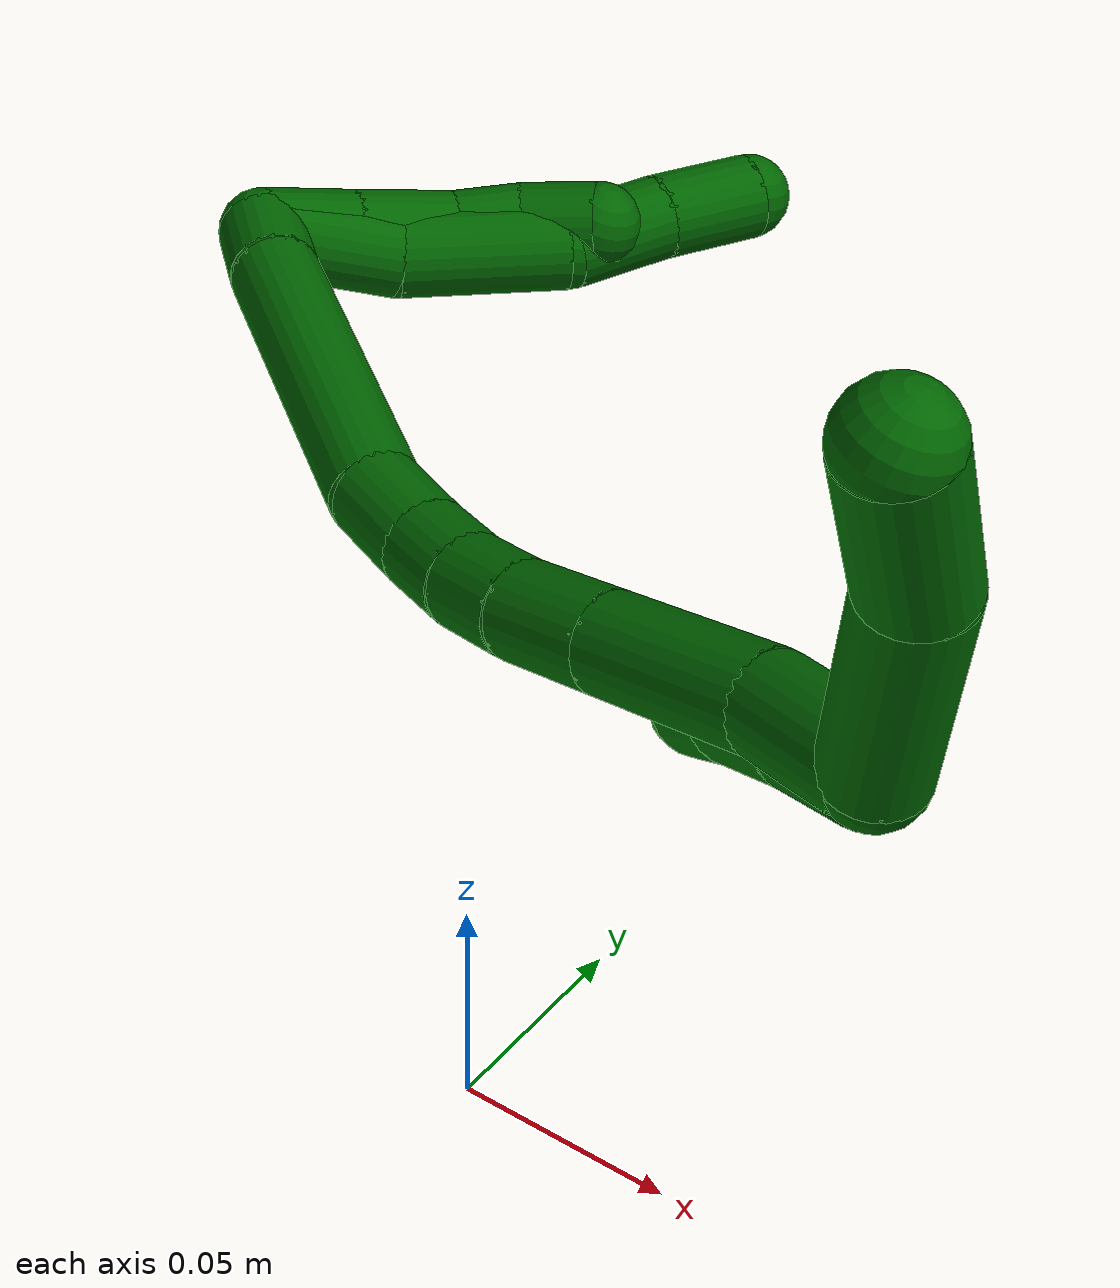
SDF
<sdf version="1.7">
 <world name="default">
  <model name="6">
   <static>0</static>
   <link name="6">
    <collision name="collision-cylinder-e_1_2_8">
     <pose>0.0099 0.017342 -0.000235 -1.58436 0.518655 -0.525417</pose>
     <geometry><cylinder><radius>0.0125</radius><length>0.039941</length></cylinder></geometry>
     <surface>
      <friction><ode><mu>1.16</mu><mu2>1.16</mu2><slip1>0</slip1><slip2>0</slip2></ode></friction>
      <contact><ode><kp>1e+06</kp><kd>1</kd><max_vel>0</max_vel><min_depth>0.001</min_depth></ode></contact>
     </surface>
    </collision>
    <visual name="visual-cylinder-e_1_2_8">
     <pose>0.0099 0.017342 -0.000235 -1.58436 0.518655 -0.525417</pose>
     <geometry><cylinder><radius>0.0125</radius><length>0.039941</length></cylinder></geometry>
     <material><ambient>0 0.392157 0.003922 1</ambient></material>
    </visual>
    <collision name="collision-cylinder-e_2_8_9">
     <pose>0.031085 0.055619 0.005465 -1.29452 0.478443 -0.364617</pose>
     <geometry><cylinder><radius>0.0125</radius><length>0.049024</length></cylinder></geometry>
     <surface>
      <friction><ode><mu>1.16</mu><mu2>1.16</mu2><slip1>0</slip1><slip2>0</slip2></ode></friction>
      <contact><ode><kp>1e+06</kp><kd>1</kd><max_vel>0</max_vel><min_depth>0.001</min_depth></ode></contact>
     </surface>
    </collision>
    <visual name="visual-cylinder-e_2_8_9">
     <pose>0.031085 0.055619 0.005465 -1.29452 0.478443 -0.364617</pose>
     <geometry><cylinder><radius>0.0125</radius><length>0.049024</length></cylinder></geometry>
     <material><ambient>0 0.392157 0.003922 1</ambient></material>
    </visual>
    <collision name="collision-cylinder-e_3_9_10">
     <pose>0.044512 0.091297 0.015418 -1.30478 0.13931 -0.106503</pose>
     <geometry><cylinder><radius>0.0125</radius><length>0.030859</length></cylinder></geometry>
     <surface>
      <friction><ode><mu>1.16</mu><mu2>1.16</mu2><slip1>0</slip1><slip2>0</slip2></ode></friction>
      <contact><ode><kp>1e+06</kp><kd>1</kd><max_vel>0</max_vel><min_depth>0.001</min_depth></ode></contact>
     </surface>
    </collision>
    <visual name="visual-cylinder-e_3_9_10">
     <pose>0.044512 0.091297 0.015418 -1.30478 0.13931 -0.106503</pose>
     <geometry><cylinder><radius>0.0125</radius><length>0.030859</length></cylinder></geometry>
     <material><ambient>0 0.392157 0.003922 1</ambient></material>
    </visual>
    <collision name="collision-cylinder-e_4_10_6">
     <pose>0.049554 0.120503 0.022601 -1.35525 0.193382 -0.155794</pose>
     <geometry><cylinder><radius>0.0125</radius><length>0.030176</length></cylinder></geometry>
     <surface>
      <friction><ode><mu>1.16</mu><mu2>1.16</mu2><slip1>0</slip1><slip2>0</slip2></ode></friction>
      <contact><ode><kp>1e+06</kp><kd>1</kd><max_vel>0</max_vel><min_depth>0.001</min_depth></ode></contact>
     </surface>
    </collision>
    <visual name="visual-cylinder-e_4_10_6">
     <pose>0.049554 0.120503 0.022601 -1.35525 0.193382 -0.155794</pose>
     <geometry><cylinder><radius>0.0125</radius><length>0.030176</length></cylinder></geometry>
     <material><ambient>0 0.392157 0.003922 1</ambient></material>
    </visual>
    <collision name="collision-cylinder-e_1_2_11">
     <pose>0.004572 0.012812 0.000534 -1.52916 0.342515 -0.328797</pose>
     <geometry><cylinder><radius>0.0125</radius><length>0.027229</length></cylinder></geometry>
     <surface>
      <friction><ode><mu>1.16</mu><mu2>1.16</mu2><slip1>0</slip1><slip2>0</slip2></ode></friction>
      <contact><ode><kp>1e+06</kp><kd>1</kd><max_vel>0</max_vel><min_depth>0.001</min_depth></ode></contact>
     </surface>
    </collision>
    <visual name="visual-cylinder-e_1_2_11">
     <pose>0.004572 0.012812 0.000534 -1.52916 0.342515 -0.328797</pose>
     <geometry><cylinder><radius>0.0125</radius><length>0.027229</length></cylinder></geometry>
     <material><ambient>0 0.392157 0.003922 1</ambient></material>
    </visual>
    <collision name="collision-cylinder-e_2_11_12">
     <pose>0.014917 0.039315 0.002546 -1.46323 0.396925 -0.357276</pose>
     <geometry><cylinder><radius>0.0125</radius><length>0.029862</length></cylinder></geometry>
     <surface>
      <friction><ode><mu>1.16</mu><mu2>1.16</mu2><slip1>0</slip1><slip2>0</slip2></ode></friction>
      <contact><ode><kp>1e+06</kp><kd>1</kd><max_vel>0</max_vel><min_depth>0.001</min_depth></ode></contact>
     </surface>
    </collision>
    <visual name="visual-cylinder-e_2_11_12">
     <pose>0.014917 0.039315 0.002546 -1.46323 0.396925 -0.357276</pose>
     <geometry><cylinder><radius>0.0125</radius><length>0.029862</length></cylinder></geometry>
     <material><ambient>0 0.392157 0.003922 1</ambient></material>
    </visual>
    <collision name="collision-cylinder-e_3_12_13">
     <pose>0.025035 0.061692 0.007149 -1.22552 0.440001 -0.311874</pose>
     <geometry><cylinder><radius>0.0125</radius><length>0.020407</length></cylinder></geometry>
     <surface>
      <friction><ode><mu>1.16</mu><mu2>1.16</mu2><slip1>0</slip1><slip2>0</slip2></ode></friction>
      <contact><ode><kp>1e+06</kp><kd>1</kd><max_vel>0</max_vel><min_depth>0.001</min_depth></ode></contact>
     </surface>
    </collision>
    <visual name="visual-cylinder-e_3_12_13">
     <pose>0.025035 0.061692 0.007149 -1.22552 0.440001 -0.311874</pose>
     <geometry><cylinder><radius>0.0125</radius><length>0.020407</length></cylinder></geometry>
     <material><ambient>0 0.392157 0.003922 1</ambient></material>
    </visual>
    <collision name="collision-cylinder-e_4_13_5">
     <pose>0.036812 0.077452 0.014894 -0.992153 0.721387 -0.402756</pose>
     <geometry><cylinder><radius>0.0125</radius><length>0.022503</length></cylinder></geometry>
     <surface>
      <friction><ode><mu>1.16</mu><mu2>1.16</mu2><slip1>0</slip1><slip2>0</slip2></ode></friction>
      <contact><ode><kp>1e+06</kp><kd>1</kd><max_vel>0</max_vel><min_depth>0.001</min_depth></ode></contact>
     </surface>
    </collision>
    <visual name="visual-cylinder-e_4_13_5">
     <pose>0.036812 0.077452 0.014894 -0.992153 0.721387 -0.402756</pose>
     <geometry><cylinder><radius>0.0125</radius><length>0.022503</length></cylinder></geometry>
     <material><ambient>0 0.392157 0.003922 1</ambient></material>
    </visual>
    <collision name="collision-cylinder-e_1_2_14">
     <pose>0.009841 -0.004788 0.00156 1.25587 1.09783 0.835715</pose>
     <geometry><cylinder><radius>0.0125</radius><length>0.02211</length></cylinder></geometry>
     <surface>
      <friction><ode><mu>1.16</mu><mu2>1.16</mu2><slip1>0</slip1><slip2>0</slip2></ode></friction>
      <contact><ode><kp>1e+06</kp><kd>1</kd><max_vel>0</max_vel><min_depth>0.001</min_depth></ode></contact>
     </surface>
    </collision>
    <visual name="visual-cylinder-e_1_2_14">
     <pose>0.009841 -0.004788 0.00156 1.25587 1.09783 0.835715</pose>
     <geometry><cylinder><radius>0.0125</radius><length>0.02211</length></cylinder></geometry>
     <material><ambient>0 0.392157 0.003922 1</ambient></material>
    </visual>
    <collision name="collision-cylinder-e_2_14_15">
     <pose>0.064595 -0.02497 0.0083 1.24619 1.2238 0.934118</pose>
     <geometry><cylinder><radius>0.0125</radius><length>0.095517</length></cylinder></geometry>
     <surface>
      <friction><ode><mu>1.16</mu><mu2>1.16</mu2><slip1>0</slip1><slip2>0</slip2></ode></friction>
      <contact><ode><kp>1e+06</kp><kd>1</kd><max_vel>0</max_vel><min_depth>0.001</min_depth></ode></contact>
     </surface>
    </collision>
    <visual name="visual-cylinder-e_2_14_15">
     <pose>0.064595 -0.02497 0.0083 1.24619 1.2238 0.934118</pose>
     <geometry><cylinder><radius>0.0125</radius><length>0.095517</length></cylinder></geometry>
     <material><ambient>0 0.392157 0.003922 1</ambient></material>
    </visual>
    <collision name="collision-cylinder-e_3_15_16">
     <pose>0.121714 -0.042051 0.016752 0.476202 1.27785 0.356765</pose>
     <geometry><cylinder><radius>0.0125</radius><length>0.025501</length></cylinder></geometry>
     <surface>
      <friction><ode><mu>1.16</mu><mu2>1.16</mu2><slip1>0</slip1><slip2>0</slip2></ode></friction>
      <contact><ode><kp>1e+06</kp><kd>1</kd><max_vel>0</max_vel><min_depth>0.001</min_depth></ode></contact>
     </surface>
    </collision>
    <visual name="visual-cylinder-e_3_15_16">
     <pose>0.121714 -0.042051 0.016752 0.476202 1.27785 0.356765</pose>
     <geometry><cylinder><radius>0.0125</radius><length>0.025501</length></cylinder></geometry>
     <material><ambient>0 0.392157 0.003922 1</ambient></material>
    </visual>
    <collision name="collision-cylinder-e_4_16_17">
     <pose>0.143445 -0.045565 0.023903 0.43993 1.14786 0.287115</pose>
     <geometry><cylinder><radius>0.0125</radius><length>0.020889</length></cylinder></geometry>
     <surface>
      <friction><ode><mu>1.16</mu><mu2>1.16</mu2><slip1>0</slip1><slip2>0</slip2></ode></friction>
      <contact><ode><kp>1e+06</kp><kd>1</kd><max_vel>0</max_vel><min_depth>0.001</min_depth></ode></contact>
     </surface>
    </collision>
    <visual name="visual-cylinder-e_4_16_17">
     <pose>0.143445 -0.045565 0.023903 0.43993 1.14786 0.287115</pose>
     <geometry><cylinder><radius>0.0125</radius><length>0.020889</length></cylinder></geometry>
     <material><ambient>0 0.392157 0.003922 1</ambient></material>
    </visual>
    <collision name="collision-cylinder-e_5_17_18">
     <pose>0.162546 -0.048239 0.032822 0.166725 1.0805 0.100145</pose>
     <geometry><cylinder><radius>0.0125</radius><length>0.02171</length></cylinder></geometry>
     <surface>
      <friction><ode><mu>1.16</mu><mu2>1.16</mu2><slip1>0</slip1><slip2>0</slip2></ode></friction>
      <contact><ode><kp>1e+06</kp><kd>1</kd><max_vel>0</max_vel><min_depth>0.001</min_depth></ode></contact>
     </surface>
    </collision>
    <visual name="visual-cylinder-e_5_17_18">
     <pose>0.162546 -0.048239 0.032822 0.166725 1.0805 0.100145</pose>
     <geometry><cylinder><radius>0.0125</radius><length>0.02171</length></cylinder></geometry>
     <material><ambient>0 0.392157 0.003922 1</ambient></material>
    </visual>
    <collision name="collision-cylinder-e_6_18_19">
     <pose>0.184765 -0.048872 0.045395 -0.028517 1.03333 -0.016202</pose>
     <geometry><cylinder><radius>0.0125</radius><length>0.029436</length></cylinder></geometry>
     <surface>
      <friction><ode><mu>1.16</mu><mu2>1.16</mu2><slip1>0</slip1><slip2>0</slip2></ode></friction>
      <contact><ode><kp>1e+06</kp><kd>1</kd><max_vel>0</max_vel><min_depth>0.001</min_depth></ode></contact>
     </surface>
    </collision>
    <visual name="visual-cylinder-e_6_18_19">
     <pose>0.184765 -0.048872 0.045395 -0.028517 1.03333 -0.016202</pose>
     <geometry><cylinder><radius>0.0125</radius><length>0.029436</length></cylinder></geometry>
     <material><ambient>0 0.392157 0.003922 1</ambient></material>
    </visual>
    <collision name="collision-cylinder-e_7_19_20">
     <pose>0.218468 -0.04843 0.065579 -0.017952 1.02973 -0.010157</pose>
     <geometry><cylinder><radius>0.0125</radius><length>0.049139</length></cylinder></geometry>
     <surface>
      <friction><ode><mu>1.16</mu><mu2>1.16</mu2><slip1>0</slip1><slip2>0</slip2></ode></friction>
      <contact><ode><kp>1e+06</kp><kd>1</kd><max_vel>0</max_vel><min_depth>0.001</min_depth></ode></contact>
     </surface>
    </collision>
    <visual name="visual-cylinder-e_7_19_20">
     <pose>0.218468 -0.04843 0.065579 -0.017952 1.02973 -0.010157</pose>
     <geometry><cylinder><radius>0.0125</radius><length>0.049139</length></cylinder></geometry>
     <material><ambient>0 0.392157 0.003922 1</ambient></material>
    </visual>
    <collision name="collision-cylinder-e_8_20_1">
     <pose>0.255031 -0.051626 0.086389 0.397282 1.05226 0.232739</pose>
     <geometry><cylinder><radius>0.0125</radius><length>0.035698</length></cylinder></geometry>
     <surface>
      <friction><ode><mu>1.16</mu><mu2>1.16</mu2><slip1>0</slip1><slip2>0</slip2></ode></friction>
      <contact><ode><kp>1e+06</kp><kd>1</kd><max_vel>0</max_vel><min_depth>0.001</min_depth></ode></contact>
     </surface>
    </collision>
    <visual name="visual-cylinder-e_8_20_1">
     <pose>0.255031 -0.051626 0.086389 0.397282 1.05226 0.232739</pose>
     <geometry><cylinder><radius>0.0125</radius><length>0.035698</length></cylinder></geometry>
     <material><ambient>0 0.392157 0.003922 1</ambient></material>
    </visual>
    <collision name="collision-cylinder-e_1_1_21">
     <pose>0.267969 -0.062361 0.1216 0.263972 -0.091229 -0.01212</pose>
     <geometry><cylinder><radius>0.0125</radius><length>0.056283</length></cylinder></geometry>
     <surface>
      <friction><ode><mu>1.16</mu><mu2>1.16</mu2><slip1>0</slip1><slip2>0</slip2></ode></friction>
      <contact><ode><kp>1e+06</kp><kd>1</kd><max_vel>0</max_vel><min_depth>0.001</min_depth></ode></contact>
     </surface>
    </collision>
    <visual name="visual-cylinder-e_1_1_21">
     <pose>0.267969 -0.062361 0.1216 0.263972 -0.091229 -0.01212</pose>
     <geometry><cylinder><radius>0.0125</radius><length>0.056283</length></cylinder></geometry>
     <material><ambient>0 0.392157 0.003922 1</ambient></material>
    </visual>
    <collision name="collision-cylinder-e_2_21_4">
     <pose>0.262112 -0.080535 0.167334 0.526721 -0.151266 -0.040857</pose>
     <geometry><cylinder><radius>0.0125</radius><length>0.043717</length></cylinder></geometry>
     <surface>
      <friction><ode><mu>1.16</mu><mu2>1.16</mu2><slip1>0</slip1><slip2>0</slip2></ode></friction>
      <contact><ode><kp>1e+06</kp><kd>1</kd><max_vel>0</max_vel><min_depth>0.001</min_depth></ode></contact>
     </surface>
    </collision>
    <visual name="visual-cylinder-e_2_21_4">
     <pose>0.262112 -0.080535 0.167334 0.526721 -0.151266 -0.040857</pose>
     <geometry><cylinder><radius>0.0125</radius><length>0.043717</length></cylinder></geometry>
     <material><ambient>0 0.392157 0.003922 1</ambient></material>
    </visual>
    <collision name="collision-cylinder-e_1_1_22">
     <pose>0.259424 -0.04975 0.085169 -2.62733 -0.800848 2.02987</pose>
     <geometry><cylinder><radius>0.0125</radius><length>0.030946</length></cylinder></geometry>
     <surface>
      <friction><ode><mu>1.16</mu><mu2>1.16</mu2><slip1>0</slip1><slip2>0</slip2></ode></friction>
      <contact><ode><kp>1e+06</kp><kd>1</kd><max_vel>0</max_vel><min_depth>0.001</min_depth></ode></contact>
     </surface>
    </collision>
    <visual name="visual-cylinder-e_1_1_22">
     <pose>0.259424 -0.04975 0.085169 -2.62733 -0.800848 2.02987</pose>
     <geometry><cylinder><radius>0.0125</radius><length>0.030946</length></cylinder></geometry>
     <material><ambient>0 0.392157 0.003922 1</ambient></material>
    </visual>
    <collision name="collision-cylinder-e_2_22_23">
     <pose>0.235001 -0.035205 0.060849 -2.5874 -0.648412 1.73691</pose>
     <geometry><cylinder><radius>0.0125</radius><length>0.044095</length></cylinder></geometry>
     <surface>
      <friction><ode><mu>1.16</mu><mu2>1.16</mu2><slip1>0</slip1><slip2>0</slip2></ode></friction>
      <contact><ode><kp>1e+06</kp><kd>1</kd><max_vel>0</max_vel><min_depth>0.001</min_depth></ode></contact>
     </surface>
    </collision>
    <visual name="visual-cylinder-e_2_22_23">
     <pose>0.235001 -0.035205 0.060849 -2.5874 -0.648412 1.73691</pose>
     <geometry><cylinder><radius>0.0125</radius><length>0.044095</length></cylinder></geometry>
     <material><ambient>0 0.392157 0.003922 1</ambient></material>
    </visual>
    <collision name="collision-cylinder-e_3_23_3">
     <pose>0.214334 -0.021245 0.03699 -2.65542 -0.629991 1.84049</pose>
     <geometry><cylinder><radius>0.0125</radius><length>0.02496</length></cylinder></geometry>
     <surface>
      <friction><ode><mu>1.16</mu><mu2>1.16</mu2><slip1>0</slip1><slip2>0</slip2></ode></friction>
      <contact><ode><kp>1e+06</kp><kd>1</kd><max_vel>0</max_vel><min_depth>0.001</min_depth></ode></contact>
     </surface>
    </collision>
    <visual name="visual-cylinder-e_3_23_3">
     <pose>0.214334 -0.021245 0.03699 -2.65542 -0.629991 1.84049</pose>
     <geometry><cylinder><radius>0.0125</radius><length>0.02496</length></cylinder></geometry>
     <material><ambient>0 0.392157 0.003922 1</ambient></material>
    </visual>
    <collision name="collision-sphere-3">
     <pose>0.206981 -0.016534 0.028075 0 -0 0</pose>
     <geometry><sphere><radius>0.0125</radius></sphere></geometry>
     <surface>
      <friction><ode><mu>1.16</mu><mu2>1.16</mu2><slip1>0</slip1><slip2>0</slip2></ode></friction>
      <contact><ode><kp>1e+06</kp><kd>1</kd><max_vel>0</max_vel><min_depth>0.001</min_depth></ode></contact>
     </surface>
    </collision>
    <visual name="visual-sphere-3">
     <pose>0.206981 -0.016534 0.028075 0 -0 0</pose>
     <geometry><sphere><radius>0.0125</radius></sphere></geometry>
     <material><ambient>0 0.392157 0.003922 1</ambient></material>
    </visual>
    <collision name="collision-sphere-23">
     <pose>0.221686 -0.025957 0.045906 0 -0 0</pose>
     <geometry><sphere><radius>0.0125</radius></sphere></geometry>
     <surface>
      <friction><ode><mu>1.16</mu><mu2>1.16</mu2><slip1>0</slip1><slip2>0</slip2></ode></friction>
      <contact><ode><kp>1e+06</kp><kd>1</kd><max_vel>0</max_vel><min_depth>0.001</min_depth></ode></contact>
     </surface>
    </collision>
    <visual name="visual-sphere-23">
     <pose>0.221686 -0.025957 0.045906 0 -0 0</pose>
     <geometry><sphere><radius>0.0125</radius></sphere></geometry>
     <material><ambient>0 0.392157 0.003922 1</ambient></material>
    </visual>
    <collision name="collision-sphere-22">
     <pose>0.248316 -0.044452 0.075791 0 -0 0</pose>
     <geometry><sphere><radius>0.0125</radius></sphere></geometry>
     <surface>
      <friction><ode><mu>1.16</mu><mu2>1.16</mu2><slip1>0</slip1><slip2>0</slip2></ode></friction>
      <contact><ode><kp>1e+06</kp><kd>1</kd><max_vel>0</max_vel><min_depth>0.001</min_depth></ode></contact>
     </surface>
    </collision>
    <visual name="visual-sphere-22">
     <pose>0.248316 -0.044452 0.075791 0 -0 0</pose>
     <geometry><sphere><radius>0.0125</radius></sphere></geometry>
     <material><ambient>0 0.392157 0.003922 1</ambient></material>
    </visual>
    <collision name="collision-sphere-4">
     <pose>0.258818 -0.091398 0.186014 0 -0 0</pose>
     <geometry><sphere><radius>0.0125</radius></sphere></geometry>
     <surface>
      <friction><ode><mu>1.16</mu><mu2>1.16</mu2><slip1>0</slip1><slip2>0</slip2></ode></friction>
      <contact><ode><kp>1e+06</kp><kd>1</kd><max_vel>0</max_vel><min_depth>0.001</min_depth></ode></contact>
     </surface>
    </collision>
    <visual name="visual-sphere-4">
     <pose>0.258818 -0.091398 0.186014 0 -0 0</pose>
     <geometry><sphere><radius>0.0125</radius></sphere></geometry>
     <material><ambient>0 0.392157 0.003922 1</ambient></material>
    </visual>
    <collision name="collision-sphere-21">
     <pose>0.265406 -0.069673 0.148654 0 -0 0</pose>
     <geometry><sphere><radius>0.0125</radius></sphere></geometry>
     <surface>
      <friction><ode><mu>1.16</mu><mu2>1.16</mu2><slip1>0</slip1><slip2>0</slip2></ode></friction>
      <contact><ode><kp>1e+06</kp><kd>1</kd><max_vel>0</max_vel><min_depth>0.001</min_depth></ode></contact>
     </surface>
    </collision>
    <visual name="visual-sphere-21">
     <pose>0.265406 -0.069673 0.148654 0 -0 0</pose>
     <geometry><sphere><radius>0.0125</radius></sphere></geometry>
     <material><ambient>0 0.392157 0.003922 1</ambient></material>
    </visual>
    <collision name="collision-sphere-1">
     <pose>0.270533 -0.055048 0.094546 0 -0 0</pose>
     <geometry><sphere><radius>0.0125</radius></sphere></geometry>
     <surface>
      <friction><ode><mu>1.16</mu><mu2>1.16</mu2><slip1>0</slip1><slip2>0</slip2></ode></friction>
      <contact><ode><kp>1e+06</kp><kd>1</kd><max_vel>0</max_vel><min_depth>0.001</min_depth></ode></contact>
     </surface>
    </collision>
    <visual name="visual-sphere-1">
     <pose>0.270533 -0.055048 0.094546 0 -0 0</pose>
     <geometry><sphere><radius>0.0125</radius></sphere></geometry>
     <material><ambient>0 0.392157 0.003922 1</ambient></material>
    </visual>
    <collision name="collision-sphere-11">
     <pose>0.009145 0.025625 0.001068 0 -0 0</pose>
     <geometry><sphere><radius>0.0125</radius></sphere></geometry>
     <surface>
      <friction><ode><mu>1.16</mu><mu2>1.16</mu2><slip1>0</slip1><slip2>0</slip2></ode></friction>
      <contact><ode><kp>1e+06</kp><kd>1</kd><max_vel>0</max_vel><min_depth>0.001</min_depth></ode></contact>
     </surface>
    </collision>
    <visual name="visual-sphere-11">
     <pose>0.009145 0.025625 0.001068 0 -0 0</pose>
     <geometry><sphere><radius>0.0125</radius></sphere></geometry>
     <material><ambient>0 0.392157 0.003922 1</ambient></material>
    </visual>
    <collision name="collision-sphere-6">
     <pose>0.052454 0.134967 0.025768 0 -0 0</pose>
     <geometry><sphere><radius>0.0125</radius></sphere></geometry>
     <surface>
      <friction><ode><mu>1.16</mu><mu2>1.16</mu2><slip1>0</slip1><slip2>0</slip2></ode></friction>
      <contact><ode><kp>1e+06</kp><kd>1</kd><max_vel>0</max_vel><min_depth>0.001</min_depth></ode></contact>
     </surface>
    </collision>
    <visual name="visual-sphere-6">
     <pose>0.052454 0.134967 0.025768 0 -0 0</pose>
     <geometry><sphere><radius>0.0125</radius></sphere></geometry>
     <material><ambient>0 0.392157 0.003922 1</ambient></material>
    </visual>
    <collision name="collision-sphere-10">
     <pose>0.046655 0.106039 0.019435 0 -0 0</pose>
     <geometry><sphere><radius>0.0125</radius></sphere></geometry>
     <surface>
      <friction><ode><mu>1.16</mu><mu2>1.16</mu2><slip1>0</slip1><slip2>0</slip2></ode></friction>
      <contact><ode><kp>1e+06</kp><kd>1</kd><max_vel>0</max_vel><min_depth>0.001</min_depth></ode></contact>
     </surface>
    </collision>
    <visual name="visual-sphere-10">
     <pose>0.046655 0.106039 0.019435 0 -0 0</pose>
     <geometry><sphere><radius>0.0125</radius></sphere></geometry>
     <material><ambient>0 0.392157 0.003922 1</ambient></material>
    </visual>
    <collision name="collision-sphere-9">
     <pose>0.04237 0.076554 0.011401 0 -0 0</pose>
     <geometry><sphere><radius>0.0125</radius></sphere></geometry>
     <surface>
      <friction><ode><mu>1.16</mu><mu2>1.16</mu2><slip1>0</slip1><slip2>0</slip2></ode></friction>
      <contact><ode><kp>1e+06</kp><kd>1</kd><max_vel>0</max_vel><min_depth>0.001</min_depth></ode></contact>
     </surface>
    </collision>
    <visual name="visual-sphere-9">
     <pose>0.04237 0.076554 0.011401 0 -0 0</pose>
     <geometry><sphere><radius>0.0125</radius></sphere></geometry>
     <material><ambient>0 0.392157 0.003922 1</ambient></material>
    </visual>
    <collision name="collision-sphere-2">
     <geometry><sphere><radius>0.0125</radius></sphere></geometry>
     <surface>
      <friction><ode><mu>1.16</mu><mu2>1.16</mu2><slip1>0</slip1><slip2>0</slip2></ode></friction>
      <contact><ode><kp>1e+06</kp><kd>1</kd><max_vel>0</max_vel><min_depth>0.001</min_depth></ode></contact>
     </surface>
    </collision>
    <visual name="visual-sphere-2">
     <geometry><sphere><radius>0.0125</radius></sphere></geometry>
     <material><ambient>0 0.392157 0.003922 1</ambient></material>
    </visual>
    <collision name="collision-sphere-19">
     <pose>0.197408 -0.048657 0.052927 0 -0 0</pose>
     <geometry><sphere><radius>0.0125</radius></sphere></geometry>
     <surface>
      <friction><ode><mu>1.16</mu><mu2>1.16</mu2><slip1>0</slip1><slip2>0</slip2></ode></friction>
      <contact><ode><kp>1e+06</kp><kd>1</kd><max_vel>0</max_vel><min_depth>0.001</min_depth></ode></contact>
     </surface>
    </collision>
    <visual name="visual-sphere-19">
     <pose>0.197408 -0.048657 0.052927 0 -0 0</pose>
     <geometry><sphere><radius>0.0125</radius></sphere></geometry>
     <material><ambient>0 0.392157 0.003922 1</ambient></material>
    </visual>
    <collision name="collision-sphere-8">
     <pose>0.019799 0.034685 -0.00047 0 -0 0</pose>
     <geometry><sphere><radius>0.0125</radius></sphere></geometry>
     <surface>
      <friction><ode><mu>1.16</mu><mu2>1.16</mu2><slip1>0</slip1><slip2>0</slip2></ode></friction>
      <contact><ode><kp>1e+06</kp><kd>1</kd><max_vel>0</max_vel><min_depth>0.001</min_depth></ode></contact>
     </surface>
    </collision>
    <visual name="visual-sphere-8">
     <pose>0.019799 0.034685 -0.00047 0 -0 0</pose>
     <geometry><sphere><radius>0.0125</radius></sphere></geometry>
     <material><ambient>0 0.392157 0.003922 1</ambient></material>
    </visual>
    <collision name="collision-sphere-12">
     <pose>0.020689 0.053006 0.004024 0 -0 0</pose>
     <geometry><sphere><radius>0.0125</radius></sphere></geometry>
     <surface>
      <friction><ode><mu>1.16</mu><mu2>1.16</mu2><slip1>0</slip1><slip2>0</slip2></ode></friction>
      <contact><ode><kp>1e+06</kp><kd>1</kd><max_vel>0</max_vel><min_depth>0.001</min_depth></ode></contact>
     </surface>
    </collision>
    <visual name="visual-sphere-12">
     <pose>0.020689 0.053006 0.004024 0 -0 0</pose>
     <geometry><sphere><radius>0.0125</radius></sphere></geometry>
     <material><ambient>0 0.392157 0.003922 1</ambient></material>
    </visual>
    <collision name="collision-sphere-13">
     <pose>0.029381 0.070379 0.010273 0 -0 0</pose>
     <geometry><sphere><radius>0.0125</radius></sphere></geometry>
     <surface>
      <friction><ode><mu>1.16</mu><mu2>1.16</mu2><slip1>0</slip1><slip2>0</slip2></ode></friction>
      <contact><ode><kp>1e+06</kp><kd>1</kd><max_vel>0</max_vel><min_depth>0.001</min_depth></ode></contact>
     </surface>
    </collision>
    <visual name="visual-sphere-13">
     <pose>0.029381 0.070379 0.010273 0 -0 0</pose>
     <geometry><sphere><radius>0.0125</radius></sphere></geometry>
     <material><ambient>0 0.392157 0.003922 1</ambient></material>
    </visual>
    <collision name="collision-sphere-5">
     <pose>0.044243 0.084526 0.019514 0 -0 0</pose>
     <geometry><sphere><radius>0.0125</radius></sphere></geometry>
     <surface>
      <friction><ode><mu>1.16</mu><mu2>1.16</mu2><slip1>0</slip1><slip2>0</slip2></ode></friction>
      <contact><ode><kp>1e+06</kp><kd>1</kd><max_vel>0</max_vel><min_depth>0.001</min_depth></ode></contact>
     </surface>
    </collision>
    <visual name="visual-sphere-5">
     <pose>0.044243 0.084526 0.019514 0 -0 0</pose>
     <geometry><sphere><radius>0.0125</radius></sphere></geometry>
     <material><ambient>0 0.392157 0.003922 1</ambient></material>
    </visual>
    <collision name="collision-sphere-14">
     <pose>0.019683 -0.009576 0.00312 0 -0 0</pose>
     <geometry><sphere><radius>0.0125</radius></sphere></geometry>
     <surface>
      <friction><ode><mu>1.16</mu><mu2>1.16</mu2><slip1>0</slip1><slip2>0</slip2></ode></friction>
      <contact><ode><kp>1e+06</kp><kd>1</kd><max_vel>0</max_vel><min_depth>0.001</min_depth></ode></contact>
     </surface>
    </collision>
    <visual name="visual-sphere-14">
     <pose>0.019683 -0.009576 0.00312 0 -0 0</pose>
     <geometry><sphere><radius>0.0125</radius></sphere></geometry>
     <material><ambient>0 0.392157 0.003922 1</ambient></material>
    </visual>
    <collision name="collision-sphere-15">
     <pose>0.109507 -0.040363 0.01348 0 -0 0</pose>
     <geometry><sphere><radius>0.0125</radius></sphere></geometry>
     <surface>
      <friction><ode><mu>1.16</mu><mu2>1.16</mu2><slip1>0</slip1><slip2>0</slip2></ode></friction>
      <contact><ode><kp>1e+06</kp><kd>1</kd><max_vel>0</max_vel><min_depth>0.001</min_depth></ode></contact>
     </surface>
    </collision>
    <visual name="visual-sphere-15">
     <pose>0.109507 -0.040363 0.01348 0 -0 0</pose>
     <geometry><sphere><radius>0.0125</radius></sphere></geometry>
     <material><ambient>0 0.392157 0.003922 1</ambient></material>
    </visual>
    <collision name="collision-sphere-16">
     <pose>0.133921 -0.043739 0.020024 0 -0 0</pose>
     <geometry><sphere><radius>0.0125</radius></sphere></geometry>
     <surface>
      <friction><ode><mu>1.16</mu><mu2>1.16</mu2><slip1>0</slip1><slip2>0</slip2></ode></friction>
      <contact><ode><kp>1e+06</kp><kd>1</kd><max_vel>0</max_vel><min_depth>0.001</min_depth></ode></contact>
     </surface>
    </collision>
    <visual name="visual-sphere-16">
     <pose>0.133921 -0.043739 0.020024 0 -0 0</pose>
     <geometry><sphere><radius>0.0125</radius></sphere></geometry>
     <material><ambient>0 0.392157 0.003922 1</ambient></material>
    </visual>
    <collision name="collision-sphere-17">
     <pose>0.152969 -0.047391 0.027782 0 -0 0</pose>
     <geometry><sphere><radius>0.0125</radius></sphere></geometry>
     <surface>
      <friction><ode><mu>1.16</mu><mu2>1.16</mu2><slip1>0</slip1><slip2>0</slip2></ode></friction>
      <contact><ode><kp>1e+06</kp><kd>1</kd><max_vel>0</max_vel><min_depth>0.001</min_depth></ode></contact>
     </surface>
    </collision>
    <visual name="visual-sphere-17">
     <pose>0.152969 -0.047391 0.027782 0 -0 0</pose>
     <geometry><sphere><radius>0.0125</radius></sphere></geometry>
     <material><ambient>0 0.392157 0.003922 1</ambient></material>
    </visual>
    <collision name="collision-sphere-18">
     <pose>0.172122 -0.049087 0.037863 0 -0 0</pose>
     <geometry><sphere><radius>0.0125</radius></sphere></geometry>
     <surface>
      <friction><ode><mu>1.16</mu><mu2>1.16</mu2><slip1>0</slip1><slip2>0</slip2></ode></friction>
      <contact><ode><kp>1e+06</kp><kd>1</kd><max_vel>0</max_vel><min_depth>0.001</min_depth></ode></contact>
     </surface>
    </collision>
    <visual name="visual-sphere-18">
     <pose>0.172122 -0.049087 0.037863 0 -0 0</pose>
     <geometry><sphere><radius>0.0125</radius></sphere></geometry>
     <material><ambient>0 0.392157 0.003922 1</ambient></material>
    </visual>
    <collision name="collision-sphere-20">
     <pose>0.239528 -0.048203 0.078232 0 -0 0</pose>
     <geometry><sphere><radius>0.0125</radius></sphere></geometry>
     <surface>
      <friction><ode><mu>1.16</mu><mu2>1.16</mu2><slip1>0</slip1><slip2>0</slip2></ode></friction>
      <contact><ode><kp>1e+06</kp><kd>1</kd><max_vel>0</max_vel><min_depth>0.001</min_depth></ode></contact>
     </surface>
    </collision>
    <visual name="visual-sphere-20">
     <pose>0.239528 -0.048203 0.078232 0 -0 0</pose>
     <geometry><sphere><radius>0.0125</radius></sphere></geometry>
     <material><ambient>0 0.392157 0.003922 1</ambient></material>
    </visual>
    <inertial>
     <pose>0.131031 -0.009972 0.043331 0 -0 0</pose>
     <mass>0.75</mass>
     <inertia>
      <ixx>0.000126</ixx>
      <ixy>0</ixy>
      <ixz>0</ixz>
      <iyy>0.000175</iyy>
      <iyz>0</iyz>
      <izz>-8.6e-05</izz>
     </inertia>
    </inertial>
   </link>
   <pose>-0.201853 0.171535 0.075184 -0.129405 0.320878 -0.284391</pose>
  </model>
 </world>
</sdf>
